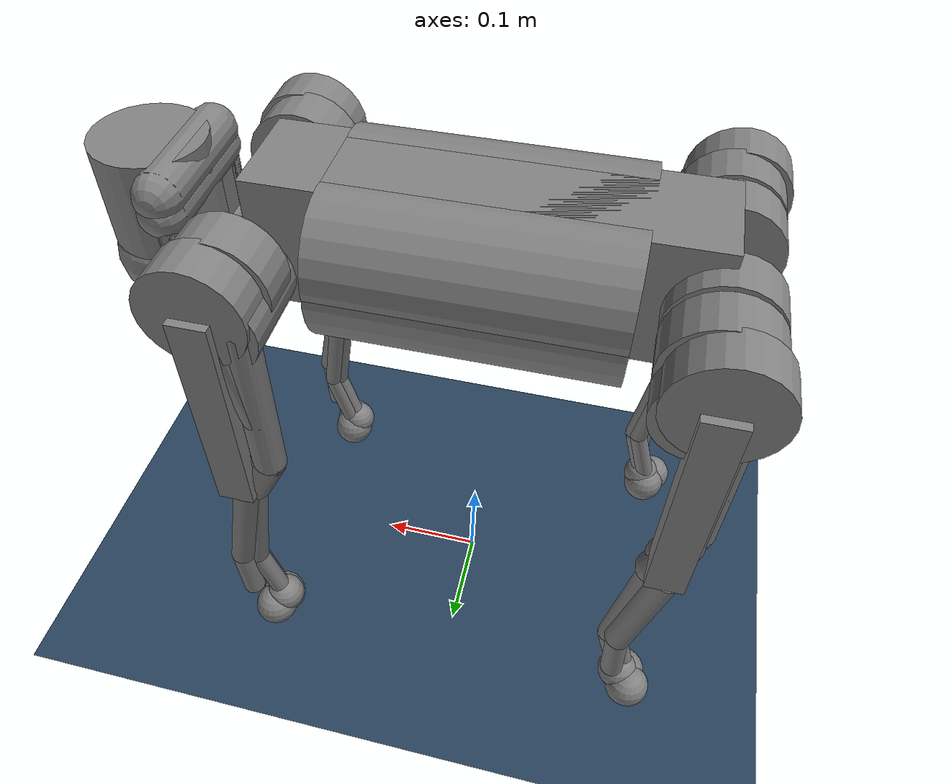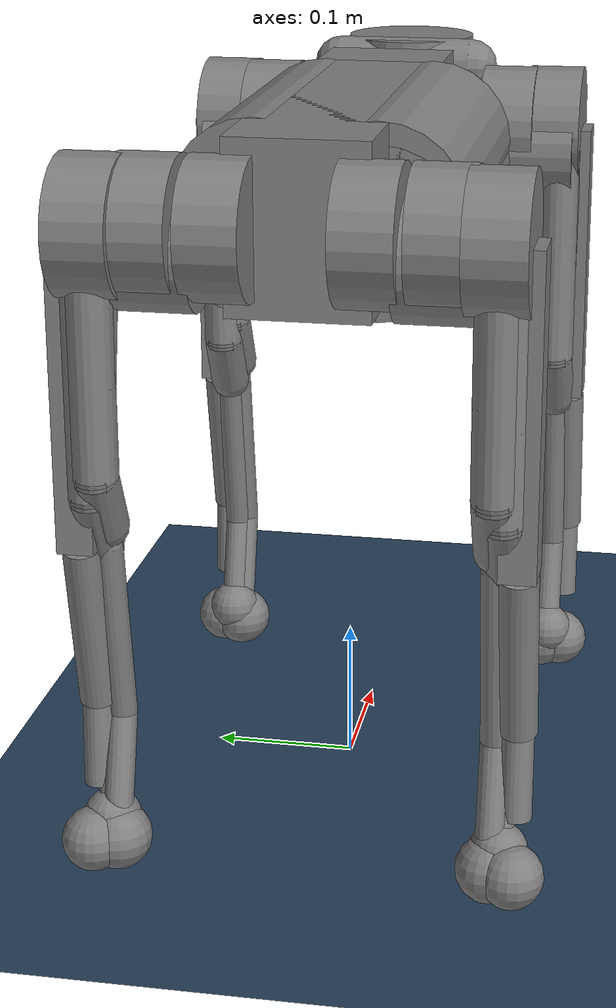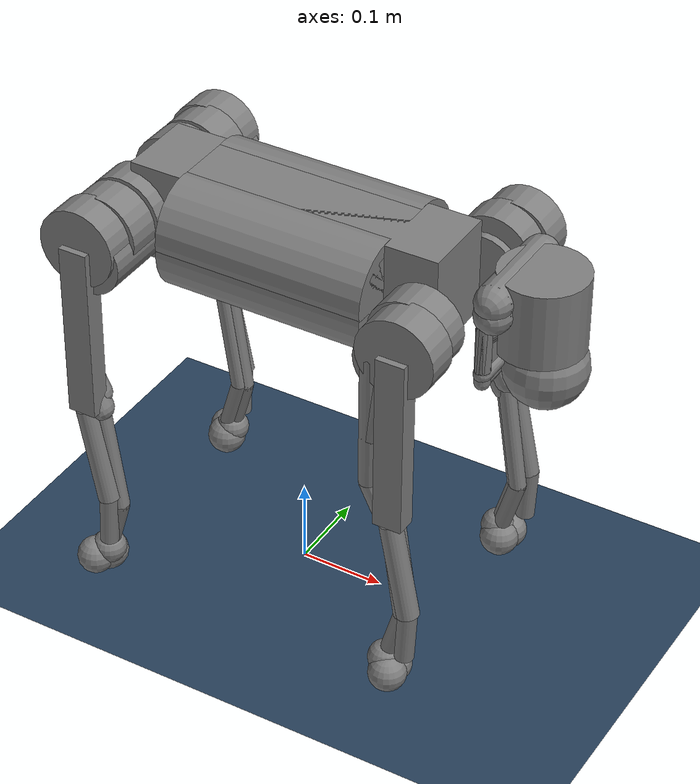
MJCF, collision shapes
<mujoco model="unitree_comparison">
  <compiler angle="radian" meshdir="." texturedir="." autolimits="true"/>
  <option timestep="0.001" iterations="100" tolerance="1e-8" solver="PGS" jacobian="sparse" cone="pyramidal"/>
  <!-- Robot: a1 -->

  <compiler angle="radian"   autolimits="true"/>

  <option cone="elliptic" impratio="100"/>

  <default>
    <default class="a1/a1">
      <geom friction="0.6" margin="0.001"/>
      <joint axis="0 1 0" damping="2" armature="0.01" frictionloss="0.2"/>
      <position kp="100" forcerange="-33.5 33.5"/>
      <default class="a1/abduction">
        <joint axis="1 0 0" damping="1" range="-0.802851 0.802851"/>
        <position ctrlrange="-0.802851 0.802851"/>
      </default>
      <default class="a1/hip">
        <joint range="-1.0472 4.18879"/>
        <position ctrlrange="-1.0472 4.18879"/>
      </default>
      <default class="a1/knee">
        <joint range="-2.69653 -0.916298"/>
        <position ctrlrange="-2.69653 -0.916298"/>
      </default>
      <default class="a1/visual">
        <geom type="mesh" contype="0" conaffinity="0" group="2" material="a1/dark"/>
      </default>
      <default class="a1/collision">
        <geom group="3" type="capsule"/>
        <default class="a1/hip_left">
          <geom size="0.04 0.04" quat="1 1 0 0" type="cylinder" pos="0 0.055 0"/>
        </default>
        <default class="a1/hip_right">
          <geom size="0.04 0.04" quat="1 1 0 0" type="cylinder" pos="0 -0.055 0"/>
        </default>
        <default class="a1/thigh1">
          <geom size="0.015" fromto="-0.02 0 0 -0.02 0 -0.16"/>
        </default>
        <default class="a1/thigh2">
          <geom size="0.015" fromto="0 0 0 -0.02 0 -0.1"/>
        </default>
        <default class="a1/thigh3">
          <geom size="0.015" fromto="-0.02 0 -0.16 0 0 -0.2"/>
        </default>
        <default class="a1/calf1">
          <geom size="0.01" fromto="0 0 0 0.02 0 -0.13"/>
        </default>
        <default class="a1/calf2">
          <geom size="0.01" fromto="0.02 0 -0.13 0 0 -0.2"/>
        </default>
        <default class="a1/foot">
          <geom type="sphere" size="0.02" pos="0 0 -0.2" priority="1" solimp="0.015 1 0.02" condim="6"
            friction="0.8 0.02 0.01"/>
        </default>
      </default>
    </default>
  </default>

  <asset>
    <material name="a1/dark" specular="0" shininess="0.25" rgba="0.2 0.2 0.2 1"/>
    <texture type="2d" name="a1/trunk_A1" file="unitree_a1/assets/trunk_A1.png"/>
    <material name="a1/carbonfibre" texture="a1/trunk_A1" specular="0" shininess="0.25"/>

    <mesh name="a1/calf" class="a1/a1" file="unitree_a1/assets/calf.obj"/>
    <mesh name="a1/hip" class="a1/a1" file="unitree_a1/assets/hip.obj"/>
    <mesh name="a1/thigh" class="a1/a1" file="unitree_a1/assets/thigh.obj"/>
    <mesh name="a1/thigh_mirror" class="a1/a1" file="unitree_a1/assets/thigh_mirror.obj"/>
    <mesh name="a1/trunk" class="a1/a1" file="unitree_a1/assets/trunk.obj"/>
  </asset>

  <worldbody>
    <light name="a1/spotlight" mode="targetbodycom" target="a1/trunk" pos="0 -1 2"/>
    <body name="a1/trunk" pos="0 0 0.43" childclass="a1/a1">
      <freejoint/>
      <inertial mass="4.713" pos="0 0.0041 -0.0005"
        fullinertia="0.0158533 0.0377999 0.0456542 -3.66e-05 -6.11e-05 -2.75e-05"/>
      <geom class="a1/visual" mesh="a1/trunk" material="a1/carbonfibre"/>
      <geom class="a1/collision" size="0.125 0.04 0.057" type="box"/>
      <geom class="a1/collision" quat="1 0 1 0" pos="0 -0.04 0" size="0.058 0.125" type="cylinder"/>
      <geom class="a1/collision" quat="1 0 1 0" pos="0 +0.04 0" size="0.058 0.125" type="cylinder"/>
      <geom class="a1/collision" pos="0.25 0 0" size="0.005 0.06 0.05" type="box"/>
      <geom class="a1/collision" pos="0.25 0.06 -0.01" size="0.009 0.035"/>
      <geom class="a1/collision" pos="0.25 -0.06 -0.01" size="0.009 0.035"/>
      <geom class="a1/collision" pos="0.25 0 -0.05" size="0.005 0.06" quat="1 1 0 0"/>
      <geom class="a1/collision" pos="0.255 0 0.0355" size="0.021 0.052" quat="1 1 0 0"/>
      <body name="a1/FR_hip" pos="0.183 -0.047 0">
        <inertial mass="0.696" pos="-0.003311 -0.000635 3.1e-05" quat="0.507528 0.506268 0.491507 0.494499"
          diaginertia="0.000807752 0.00055293 0.000468983"/>
        <joint class="a1/abduction" name="a1/FR_hip_joint"/>
        <geom class="a1/visual" mesh="a1/hip" quat="0 1 0 0"/>
        <geom class="a1/hip_right"/>
        <body name="a1/FR_thigh" pos="0 -0.08505 0">
          <inertial mass="1.013" pos="-0.003237 0.022327 -0.027326" quat="0.999125 -0.00256393 -0.0409531 -0.00806091"
            diaginertia="0.00555739 0.00513936 0.00133944"/>
          <joint class="a1/hip" name="a1/FR_thigh_joint"/>
          <geom class="a1/visual" mesh="a1/thigh_mirror"/>
          <geom class="a1/thigh1"/>
          <geom class="a1/thigh2"/>
          <geom class="a1/thigh3"/>
          <body name="a1/FR_calf" pos="0 0 -0.2">
            <inertial mass="0.226" pos="0.00472659 0 -0.131975" quat="0.706886 0.017653 0.017653 0.706886"
              diaginertia="0.00340344 0.00339393 3.54834e-05"/>
            <joint class="a1/knee" name="a1/FR_calf_joint"/>
            <geom class="a1/visual" mesh="a1/calf"/>
            <geom class="a1/calf1"/>
            <geom class="a1/calf2"/>
            <geom class="a1/foot"/>
          </body>
        </body>
      </body>
      <body name="a1/FL_hip" pos="0.183 0.047 0">
        <inertial mass="0.696" pos="-0.003311 0.000635 3.1e-05" quat="0.494499 0.491507 0.506268 0.507528"
          diaginertia="0.000807752 0.00055293 0.000468983"/>
        <joint class="a1/abduction" name="a1/FL_hip_joint"/>
        <geom class="a1/visual" mesh="a1/hip"/>
        <geom class="a1/hip_left"/>
        <geom class="a1/collision" size="0.04 0.04" pos="0 0.055 0" quat="1 1 0 0" type="cylinder"/>
        <body name="a1/FL_thigh" pos="0 0.08505 0">
          <inertial mass="1.013" pos="-0.003237 -0.022327 -0.027326" quat="0.999125 0.00256393 -0.0409531 0.00806091"
            diaginertia="0.00555739 0.00513936 0.00133944"/>
          <joint class="a1/hip" name="a1/FL_thigh_joint"/>
          <geom class="a1/visual" mesh="a1/thigh"/>
          <geom class="a1/thigh1"/>
          <geom class="a1/thigh2"/>
          <geom class="a1/thigh3"/>
          <body name="a1/FL_calf" pos="0 0 -0.2">
            <inertial mass="0.226" pos="0.00472659 0 -0.131975" quat="0.706886 0.017653 0.017653 0.706886"
              diaginertia="0.00340344 0.00339393 3.54834e-05"/>
            <joint class="a1/knee" name="a1/FL_calf_joint"/>
            <geom class="a1/visual" mesh="a1/calf"/>
            <geom class="a1/calf1"/>
            <geom class="a1/calf2"/>
            <geom class="a1/foot"/>
          </body>
        </body>
      </body>
      <body name="a1/RR_hip" pos="-0.183 -0.047 0">
        <inertial mass="0.696" pos="0.003311 -0.000635 3.1e-05" quat="0.491507 0.494499 0.507528 0.506268"
          diaginertia="0.000807752 0.00055293 0.000468983"/>
        <joint class="a1/abduction" name="a1/RR_hip_joint"/>
        <geom class="a1/visual" quat="0 0 0 -1" mesh="a1/hip"/>
        <geom class="a1/hip_right"/>
        <body name="a1/RR_thigh" pos="0 -0.08505 0">
          <inertial mass="1.013" pos="-0.003237 0.022327 -0.027326" quat="0.999125 -0.00256393 -0.0409531 -0.00806091"
            diaginertia="0.00555739 0.00513936 0.00133944"/>
          <joint class="a1/hip" name="a1/RR_thigh_joint"/>
          <geom class="a1/visual" mesh="a1/thigh_mirror"/>
          <geom class="a1/thigh1"/>
          <geom class="a1/thigh2"/>
          <geom class="a1/thigh3"/>
          <body name="a1/RR_calf" pos="0 0 -0.2">
            <inertial mass="0.226" pos="0.00472659 0 -0.131975" quat="0.706886 0.017653 0.017653 0.706886"
              diaginertia="0.00340344 0.00339393 3.54834e-05"/>
            <joint class="a1/knee" name="a1/RR_calf_joint"/>
            <geom class="a1/visual" mesh="a1/calf"/>
            <geom class="a1/calf1"/>
            <geom class="a1/calf2"/>
            <geom class="a1/foot"/>
          </body>
        </body>
      </body>
      <body name="a1/RL_hip" pos="-0.183 0.047 0">
        <inertial mass="0.696" pos="0.003311 0.000635 3.1e-05" quat="0.506268 0.507528 0.494499 0.491507"
          diaginertia="0.000807752 0.00055293 0.000468983"/>
        <joint class="a1/abduction" name="a1/RL_hip_joint"/>
        <geom class="a1/visual" quat="0 0 1 0" mesh="a1/hip"/>
        <geom class="a1/hip_left"/>
        <body name="a1/RL_thigh" pos="0 0.08505 0">
          <inertial mass="1.013" pos="-0.003237 -0.022327 -0.027326" quat="0.999125 0.00256393 -0.0409531 0.00806091"
            diaginertia="0.00555739 0.00513936 0.00133944"/>
          <joint class="a1/hip" name="a1/RL_thigh_joint"/>
          <geom class="a1/visual" mesh="a1/thigh"/>
          <geom class="a1/thigh1"/>
          <geom class="a1/thigh2"/>
          <geom class="a1/thigh3"/>
          <body name="a1/RL_calf" pos="0 0 -0.2">
            <inertial mass="0.226" pos="0.00472659 0 -0.131975" quat="0.706886 0.017653 0.017653 0.706886"
              diaginertia="0.00340344 0.00339393 3.54834e-05"/>
            <joint class="a1/knee" name="a1/RL_calf_joint"/>
            <geom class="a1/visual" mesh="a1/calf"/>
            <geom class="a1/calf1"/>
            <geom class="a1/calf2"/>
            <geom class="a1/foot"/>
          </body>
        </body>
      </body>
    </body>
  </worldbody>

  <actuator>
    <position class="a1/abduction" name="a1/FR_hip" joint="a1/FR_hip_joint"/>
    <position class="a1/hip" name="a1/FR_thigh" joint="a1/FR_thigh_joint"/>
    <position class="a1/knee" name="a1/FR_calf" joint="a1/FR_calf_joint"/>
    <position class="a1/abduction" name="a1/FL_hip" joint="a1/FL_hip_joint"/>
    <position class="a1/hip" name="a1/FL_thigh" joint="a1/FL_thigh_joint"/>
    <position class="a1/knee" name="a1/FL_calf" joint="a1/FL_calf_joint"/>
    <position class="a1/abduction" name="a1/RR_hip" joint="a1/RR_hip_joint"/>
    <position class="a1/hip" name="a1/RR_thigh" joint="a1/RR_thigh_joint"/>
    <position class="a1/knee" name="a1/RR_calf" joint="a1/RR_calf_joint"/>
    <position class="a1/abduction" name="a1/RL_hip" joint="a1/RL_hip_joint"/>
    <position class="a1/hip" name="a1/RL_thigh" joint="a1/RL_thigh_joint"/>
    <position class="a1/knee" name="a1/RL_calf" joint="a1/RL_calf_joint"/>
  </actuator>

  <keyframe>
    <key name="a1/home" qpos="0 0 0.27 1 0 0 0 0 0.9 -1.8 0 0.9 -1.8 0 0.9 -1.8 0 0.9 -1.8"
      ctrl="0 0.9 -1.8 0 0.9 -1.8 0 0.9 -1.8 0 0.9 -1.8"/>
  </keyframe>

  <!-- Robot: quadruped -->

  <compiler angle="radian"  autolimits="true"/>

  <option cone="elliptic" impratio="100"/>

  <default>
    <default class="quadruped/quadruped">
      <geom friction="0.6" margin="0.001" condim="1"/>
      <joint axis="0 1 0" damping="2" armature="0.01" frictionloss="0.2"/>
      <position kp="100" forcerange="-33.5 33.5"/>
      <default class="quadruped/abduction">
        <joint axis="1 0 0" damping="1" range="-0.863 0.863"/>
        <position ctrlrange="-0.863 0.863"/>
      </default>
      <default class="quadruped/hip">
        <joint range="-0.686 4.501"/>
        <position ctrlrange="-0.686 4.501"/>
      </default>
      <default class="quadruped/knee">
        <joint range="-2.818 -0.888"/>
        <position forcerange="-35.55 35.55" ctrlrange="-2.818 -0.888"/>
      </default>
      <default class="quadruped/visual">
        <geom type="mesh" contype="0" conaffinity="0" group="2" material="quadruped/dark"/>
      </default>
      <default class="quadruped/collision">
        <geom group="3" type="capsule"/>
        <default class="quadruped/hip_left1">
          <geom size="0.046 0.02" pos="0 0.045 0" quat="1 1 0 0" type="cylinder"/>
        </default>
        <default class="quadruped/hip_left2">
          <geom size="0.031 0.02" pos="0 0.065 0" quat="1 1 0 0" type="cylinder"/>
        </default>
        <default class="quadruped/hip_left3">
          <geom size="0.046 0.02" quat="1 1 0 0" type="cylinder"/>
        </default>
        <default class="quadruped/hip_right1">
          <geom size="0.046 0.02" pos="0 -0.045 0" quat="1 1 0 0" type="cylinder"/>
        </default>
        <default class="quadruped/hip_right2">
          <geom size="0.031 0.02" pos="0 -0.065 0" quat="1 1 0 0" type="cylinder"/>
        </default>
        <default class="quadruped/hip_right3">
          <geom size="0.046 0.02" quat="1 1 0 0" type="cylinder"/>
        </default>
        <default class="quadruped/thigh1">
          <geom size="0.015" fromto="-0.02 0 0 -0.02 0 -0.16"/>
        </default>
        <default class="quadruped/thigh2">
          <geom size="0.015" fromto="0 0 0 -0.02 0 -0.1"/>
        </default>
        <default class="quadruped/thigh3">
          <geom size="0.015" fromto="-0.02 0 -0.16 0 0 -0.2"/>
        </default>
        <default class="quadruped/calf1">
          <geom size="0.01" fromto="0 0 0 0.02 0 -0.13"/>
        </default>
        <default class="quadruped/calf2">
          <geom size="0.01" fromto="0.02 0 -0.13 0 0 -0.2"/>
        </default>
        <default class="quadruped/foot">
          <geom type="sphere" size="0.023" pos="0 0 -0.213" priority="1" solimp="0.015 1 0.023" condim="6"
            friction="0.8 0.02 0.01"/>
        </default>
      </default>
    </default>
  </default>

  <asset>
    <material name="quadruped/dark" rgba="0.2 0.2 0.2 1"/>
    <mesh name="quadruped/trunk" class="quadruped/quadruped" file="unitree_quadruped/assets/trunk.stl"/>
    <mesh name="quadruped/hip" class="quadruped/quadruped" file="unitree_quadruped/assets/hip.stl"/>
    <mesh name="quadruped/thigh_mirror" class="quadruped/quadruped" file="unitree_quadruped/assets/thigh_mirror.stl"/>
    <mesh name="quadruped/calf" class="quadruped/quadruped" file="unitree_quadruped/assets/calf.stl"/>
    <mesh name="quadruped/thigh" class="quadruped/quadruped" file="unitree_quadruped/assets/thigh.stl"/>
  </asset>

  <worldbody>
    <light name="quadruped/spotlight" mode="targetbodycom" target="quadruped/trunk" pos="0 -1 2"/>
    <body name="quadruped/trunk" pos="0 0 0.445" childclass="quadruped/quadruped">
      <camera name="quadruped/tracking" mode="trackcom" pos="0 -1 0.8" xyaxes="1 0 0 0 1 1"/>
      <site name="quadruped/head" pos="0.3 0 0" rgba="1 0 0 1" size="0.02" group="5"/>
      <inertial pos="0.0223 0.002 -0.0005" quat="-0.00342088 0.705204 0.000106698 0.708996" mass="5.204"
        diaginertia="0.0716565 0.0630105 0.0168101"/>
      <freejoint/>
      <geom class="quadruped/visual" mesh="quadruped/trunk"/>
      <geom class="quadruped/collision" size="0.125 0.04 0.057" type="box"/>
      <geom class="quadruped/collision" quat="1 0 1 0" pos="0 -0.04 0" size="0.058 0.125" type="cylinder"/>
      <geom class="quadruped/collision" quat="1 0 1 0" pos="0 +0.04 0" size="0.058 0.125" type="cylinder"/>
      <geom class="quadruped/collision" pos="0.25 0 0" size="0.005 0.06 0.05" type="box"/>
      <geom class="quadruped/collision" pos="0.25 0.06 -0.01" size="0.009 0.035"/>
      <geom class="quadruped/collision" pos="0.25 -0.06 -0.01" size="0.009 0.035"/>
      <geom class="quadruped/collision" pos="0.25 0 -0.05" size="0.01 0.06" quat="1 1 0 0"/>
      <geom class="quadruped/collision" pos="0.255 0 0.0355" size="0.021 0.052" quat="1 1 0 0"/>
      <site name="quadruped/imu" pos="0 0 0"/>
      <body name="quadruped/FR_hip" pos="0.1881 -0.04675 0">
        <inertial pos="-0.0049166 0.00762615 -8.865e-05" quat="0.507341 0.514169 0.495027 0.482891" mass="0.68"
          diaginertia="0.000734064 0.000468438 0.000398719"/>
        <joint class="quadruped/abduction" name="quadruped/FR_hip_joint"/>
        <geom class="quadruped/visual" mesh="quadruped/hip" quat="1 0 0 0"/>
        <geom class="quadruped/hip_right1"/>
        <geom class="quadruped/hip_right2"/>
        <body name="quadruped/FR_thigh" pos="0 -0.08 0">
          <inertial pos="-0.00304722 0.019315 -0.0305004" quat="0.65243 -0.0272313 0.0775126 0.753383" mass="1.009"
            diaginertia="0.00478717 0.00460903 0.000709268"/>
          <joint class="quadruped/hip" name="quadruped/FR_thigh_joint"/>
          <geom class="quadruped/visual" mesh="quadruped/thigh_mirror"/>
          <geom class="quadruped/thigh1"/>
          <geom class="quadruped/thigh2"/>
          <geom class="quadruped/thigh3"/>
          <body name="quadruped/FR_calf" pos="0 0 -0.213">
            <inertial pos="0.00429862 0.000976676 -0.146197" quat="0.691246 0.00357467 0.00511118 0.722592"
              mass="0.195862" diaginertia="0.00149767 0.00148468 3.58427e-05"/>
            <joint class="quadruped/knee" name="quadruped/FR_calf_joint"/>
            <geom class="quadruped/visual" mesh="quadruped/calf"/>
            <geom class="quadruped/calf1"/>
            <geom class="quadruped/calf2"/>
            <geom name="quadruped/FR" class="quadruped/foot"/>
            <site name="quadruped/FR" pos="0 0 -0.213" type="sphere" size="0.023" group="5"/>
          </body>
        </body>
      </body>
      <body name="quadruped/FL_hip" pos="0.1881 0.04675 0">
        <inertial pos="-0.0049166 -0.00762615 -8.865e-05" quat="0.482891 0.495027 0.514169 0.507341" mass="0.68"
          diaginertia="0.000734064 0.000468438 0.000398719"/>
        <joint class="quadruped/abduction" name="quadruped/FL_hip_joint"/>
        <geom class="quadruped/visual" mesh="quadruped/hip"/>
        <geom class="quadruped/hip_left1"/>
        <geom class="quadruped/hip_left2"/>
        <body name="quadruped/FL_thigh" pos="0 0.08 0">
          <inertial pos="-0.00304722 -0.019315 -0.0305004" quat="0.753383 0.0775126 -0.0272313 0.65243" mass="1.009"
            diaginertia="0.00478717 0.00460903 0.000709268"/>
          <joint class="quadruped/hip" name="quadruped/FL_thigh_joint"/>
          <geom class="quadruped/visual" mesh="quadruped/thigh"/>
          <geom class="quadruped/thigh1"/>
          <geom class="quadruped/thigh2"/>
          <geom class="quadruped/thigh3"/>
          <body name="quadruped/FL_calf" pos="0 0 -0.213">
            <inertial pos="0.00429862 0.000976676 -0.146197" quat="0.691246 0.00357467 0.00511118 0.722592"
              mass="0.195862" diaginertia="0.00149767 0.00148468 3.58427e-05"/>
            <joint class="quadruped/knee" name="quadruped/FL_calf_joint"/>
            <geom class="quadruped/visual" mesh="quadruped/calf"/>
            <geom class="quadruped/calf1"/>
            <geom class="quadruped/calf2"/>
            <geom name="quadruped/FL" class="quadruped/foot"/>
            <site name="quadruped/FL" pos="0 0 -0.213" type="sphere" size="0.023" group="5"/>
          </body>
        </body>
      </body>
      <body name="quadruped/RR_hip" pos="-0.1881 -0.04675 0">
        <inertial pos="0.0049166 0.00762615 -8.865e-05" quat="0.495027 0.482891 0.507341 0.514169" mass="0.68"
          diaginertia="0.000734064 0.000468438 0.000398719"/>
        <joint class="quadruped/abduction" name="quadruped/RR_hip_joint"/>
        <geom class="quadruped/visual" quat="0 0 0 -1" mesh="quadruped/hip"/>
        <geom class="quadruped/hip_right1"/>
        <geom class="quadruped/hip_right2"/>
        <geom class="quadruped/hip_right3"/>
        <body name="quadruped/RR_thigh" pos="0 -0.08 0">
          <inertial pos="-0.00304722 0.019315 -0.0305004" quat="0.65243 -0.0272313 0.0775126 0.753383" mass="1.009"
            diaginertia="0.00478717 0.00460903 0.000709268"/>
          <joint class="quadruped/hip" name="quadruped/RR_thigh_joint"/>
          <geom class="quadruped/visual" mesh="quadruped/thigh_mirror"/>
          <geom class="quadruped/thigh1"/>
          <geom class="quadruped/thigh2"/>
          <geom class="quadruped/thigh3"/>
          <body name="quadruped/RR_calf" pos="0 0 -0.213">
            <inertial pos="0.00429862 0.000976676 -0.146197" quat="0.691246 0.00357467 0.00511118 0.722592"
              mass="0.195862" diaginertia="0.00149767 0.00148468 3.58427e-05"/>
            <joint class="quadruped/knee" name="quadruped/RR_calf_joint"/>
            <geom class="quadruped/visual" mesh="quadruped/calf"/>
            <geom class="quadruped/calf1"/>
            <geom class="quadruped/calf2"/>
            <geom name="quadruped/RR" class="quadruped/foot"/>
            <site name="quadruped/RR" pos="0 0 -0.213" type="sphere" size="0.023" group="5"/>
          </body>
        </body>
      </body>
      <body name="quadruped/RL_hip" pos="-0.1881 0.04675 0">
        <inertial pos="0.0049166 -0.00762615 -8.865e-05" quat="0.514169 0.507341 0.482891 0.495027" mass="0.68"
          diaginertia="0.000734064 0.000468438 0.000398719"/>
        <joint class="quadruped/abduction" name="quadruped/RL_hip_joint"/>
        <geom class="quadruped/visual" quat="0 0 1 0" mesh="quadruped/hip"/>
        <geom class="quadruped/hip_left1"/>
        <geom class="quadruped/hip_left2"/>
        <geom class="quadruped/hip_left3"/>
        <body name="quadruped/RL_thigh" pos="0 0.08 0">
          <inertial pos="-0.00304722 -0.019315 -0.0305004" quat="0.753383 0.0775126 -0.0272313 0.65243" mass="1.009"
            diaginertia="0.00478717 0.00460903 0.000709268"/>
          <joint class="quadruped/hip" name="quadruped/RL_thigh_joint"/>
          <geom class="quadruped/visual" mesh="quadruped/thigh"/>
          <geom class="quadruped/thigh1"/>
          <geom class="quadruped/thigh2"/>
          <geom class="quadruped/thigh3"/>
          <body name="quadruped/RL_calf" pos="0 0 -0.213">
            <inertial pos="0.00429862 0.000976676 -0.146197" quat="0.691246 0.00357467 0.00511118 0.722592"
              mass="0.195862" diaginertia="0.00149767 0.00148468 3.58427e-05"/>
            <joint class="quadruped/knee" name="quadruped/RL_calf_joint"/>
            <geom class="quadruped/visual" mesh="quadruped/calf"/>
            <geom class="quadruped/calf1"/>
            <geom class="quadruped/calf2"/>
            <geom name="quadruped/RL" class="quadruped/foot"/>
            <site name="quadruped/RL" pos="0 0 -0.213" type="sphere" size="0.023" group="5"/>
          </body>
        </body>
      </body>
    </body>
  </worldbody>

  <actuator>
    <position class="quadruped/abduction" name="quadruped/FR_hip" joint="quadruped/FR_hip_joint"/>
    <position class="quadruped/hip" name="quadruped/FR_thigh" joint="quadruped/FR_thigh_joint"/>
    <position class="quadruped/knee" name="quadruped/FR_calf" joint="quadruped/FR_calf_joint"/>
    <position class="quadruped/abduction" name="quadruped/FL_hip" joint="quadruped/FL_hip_joint"/>
    <position class="quadruped/hip" name="quadruped/FL_thigh" joint="quadruped/FL_thigh_joint"/>
    <position class="quadruped/knee" name="quadruped/FL_calf" joint="quadruped/FL_calf_joint"/>
    <position class="quadruped/abduction" name="quadruped/RR_hip" joint="quadruped/RR_hip_joint"/>
    <position class="quadruped/hip" name="quadruped/RR_thigh" joint="quadruped/RR_thigh_joint"/>
    <position class="quadruped/knee" name="quadruped/RR_calf" joint="quadruped/RR_calf_joint"/>
    <position class="quadruped/abduction" name="quadruped/RL_hip" joint="quadruped/RL_hip_joint"/>
    <position class="quadruped/hip" name="quadruped/RL_thigh" joint="quadruped/RL_thigh_joint"/>
    <position class="quadruped/knee" name="quadruped/RL_calf" joint="quadruped/RL_calf_joint"/>
  </actuator>

  <keyframe>
    <key name="quadruped/home" qpos="0 0 0.27 1 0 0 0 0 0.9 -1.8 0 0.9 -1.8 0 0.9 -1.8 0 0.9 -1.8"
      ctrl="0 0.9 -1.8 0 0.9 -1.8 0 0.9 -1.8 0 0.9 -1.8"/>
  </keyframe>

  <!-- Robot: go2 -->

  <compiler angle="radian"  autolimits="true"/>

  <option cone="elliptic" impratio="100"/>

  <default>
    <default class="go2/go2">
      <geom friction="0.6" margin="0.001" condim="1"/>
      <joint axis="0 1 0" damping="2" armature="0.01" frictionloss="0.2"/>
      <motor ctrlrange="-23.7 23.7"/>
      <default class="go2/abduction">
        <joint axis="1 0 0" range="-1.0472 1.0472"/>
      </default>
      <default class="go2/hip">
        <default class="go2/front_hip">
          <joint range="-1.5708 3.4907"/>
        </default>
        <default class="go2/back_hip">
          <joint range="-0.5236 4.5379"/>
        </default>
      </default>
      <default class="go2/knee">
        <joint range="-2.7227 -0.83776"/>
        <motor ctrlrange="-45.43 45.43"/>
      </default>
      <default class="go2/visual">
        <geom type="mesh" contype="0" conaffinity="0" group="2"/>
      </default>
      <default class="go2/collision">
        <geom group="3"/>
        <default class="go2/foot">
          <geom size="0.022" pos="-0.002 0 -0.213" priority="1" solimp="0.015 1 0.022" condim="6"
            friction="0.8 0.02 0.01"/>
        </default>
      </default>
    </default>
  </default>

  <asset>
    <material name="go2/metal" rgba=".9 .95 .95 1"/>
    <material name="go2/black" rgba="0 0 0 1"/>
    <material name="go2/white" rgba="1 1 1 1"/>
    <material name="go2/gray" rgba="0.671705 0.692426 0.774270 1"/>

    <mesh name="go2/base_0" file="unitree_go2/assets/base_0.obj"/>
    <mesh name="go2/base_1" file="unitree_go2/assets/base_1.obj"/>
    <mesh name="go2/base_2" file="unitree_go2/assets/base_2.obj"/>
    <mesh name="go2/base_3" file="unitree_go2/assets/base_3.obj"/>
    <mesh name="go2/base_4" file="unitree_go2/assets/base_4.obj"/>
    <mesh name="go2/hip_0" file="unitree_go2/assets/hip_0.obj"/>
    <mesh name="go2/hip_1" file="unitree_go2/assets/hip_1.obj"/>
    <mesh name="go2/thigh_0" file="unitree_go2/assets/thigh_0.obj"/>
    <mesh name="go2/thigh_1" file="unitree_go2/assets/thigh_1.obj"/>
    <mesh name="go2/thigh_mirror_0" file="unitree_go2/assets/thigh_mirror_0.obj"/>
    <mesh name="go2/thigh_mirror_1" file="unitree_go2/assets/thigh_mirror_1.obj"/>
    <mesh name="go2/calf_0" file="unitree_go2/assets/calf_0.obj"/>
    <mesh name="go2/calf_1" file="unitree_go2/assets/calf_1.obj"/>
    <mesh name="go2/calf_mirror_0" file="unitree_go2/assets/calf_mirror_0.obj"/>
    <mesh name="go2/calf_mirror_1" file="unitree_go2/assets/calf_mirror_1.obj"/>
    <mesh name="go2/foot" file="unitree_go2/assets/foot.obj"/>
  </asset>

  <worldbody>
    <body name="go2/base" pos="0 0 0.445" childclass="go2/go2">
      <inertial pos="0.021112 0 -0.005366" quat="-0.000543471 0.713435 -0.00173769 0.700719" mass="6.921"
        diaginertia="0.107027 0.0980771 0.0244531"/>
      <freejoint/>
      <geom mesh="go2/base_0" material="go2/black" class="go2/visual"/>
      <geom mesh="go2/base_1" material="go2/black" class="go2/visual"/>
      <geom mesh="go2/base_2" material="go2/black" class="go2/visual"/>
      <geom mesh="go2/base_3" material="go2/white" class="go2/visual"/>
      <geom mesh="go2/base_4" material="go2/gray" class="go2/visual"/>
      <geom size="0.1881 0.04675 0.057" type="box" class="go2/collision"/>
      <geom size="0.05 0.045" pos="0.285 0 0.01" type="cylinder" class="go2/collision"/>
      <geom size="0.047" pos="0.293 0 -0.06" class="go2/collision"/>
      <site name="go2/imu" pos="-0.02557 0 0.04232"/>
      <body name="go2/FL_hip" pos="0.1934 0.0465 0">
        <inertial pos="-0.0054 0.00194 -0.000105" quat="0.497014 0.499245 0.505462 0.498237" mass="0.678"
          diaginertia="0.00088403 0.000596003 0.000479967"/>
        <joint name="go2/FL_hip_joint" class="go2/abduction"/>
        <geom mesh="go2/hip_0" material="go2/metal" class="go2/visual"/>
        <geom mesh="go2/hip_1" material="go2/gray" class="go2/visual"/>
        <geom size="0.046 0.02" pos="0 0.08 0" quat="1 1 0 0" type="cylinder" class="go2/collision"/>
        <body name="go2/FL_thigh" pos="0 0.0955 0">
          <inertial pos="-0.00374 -0.0223 -0.0327" quat="0.829533 0.0847635 -0.0200632 0.551623" mass="1.152"
            diaginertia="0.00594973 0.00584149 0.000878787"/>
          <joint name="go2/FL_thigh_joint" class="go2/front_hip"/>
          <geom mesh="go2/thigh_0" material="go2/metal" class="go2/visual"/>
          <geom mesh="go2/thigh_1" material="go2/gray" class="go2/visual"/>
          <geom size="0.1065 0.01225 0.017" pos="0 0 -0.1065" quat="0.707107 0 0.707107 0" type="box" class="go2/collision"/>
          <body name="go2/FL_calf" pos="0 0 -0.213">
            <inertial pos="0.00629595 -0.000622121 -0.141417" quat="0.710672 0.00154099 -0.00450087 0.703508"
              mass="0.241352" diaginertia="0.0014901 0.00146356 5.31397e-05"/>
            <joint name="go2/FL_calf_joint" class="go2/knee"/>
            <geom mesh="go2/calf_0" material="go2/gray" class="go2/visual"/>
            <geom mesh="go2/calf_1" material="go2/black" class="go2/visual"/>
            <geom size="0.012 0.06" pos="0.008 0 -0.06" quat="0.994493 0 -0.104807 0" type="cylinder" class="go2/collision"/>
            <geom size="0.011 0.0325" pos="0.02 0 -0.148" quat="0.999688 0 0.0249974 0" type="cylinder" class="go2/collision"/>
            <geom pos="0 0 -0.213" mesh="go2/foot" class="go2/visual" material="go2/black"/>
            <geom name="go2/FL" class="go2/foot"/>
          </body>
        </body>
      </body>
      <body name="go2/FR_hip" pos="0.1934 -0.0465 0">
        <inertial pos="-0.0054 -0.00194 -0.000105" quat="0.498237 0.505462 0.499245 0.497014" mass="0.678"
          diaginertia="0.00088403 0.000596003 0.000479967"/>
        <joint name="go2/FR_hip_joint" class="go2/abduction"/>
        <geom mesh="go2/hip_0" material="go2/metal" class="go2/visual" quat="4.63268e-05 1 0 0"/>
        <geom mesh="go2/hip_1" material="go2/gray" class="go2/visual" quat="4.63268e-05 1 0 0"/>
        <geom size="0.046 0.02" pos="0 -0.08 0" quat="0.707107 0.707107 0 0" type="cylinder" class="go2/collision"/>
        <body name="go2/FR_thigh" pos="0 -0.0955 0">
          <inertial pos="-0.00374 0.0223 -0.0327" quat="0.551623 -0.0200632 0.0847635 0.829533" mass="1.152"
            diaginertia="0.00594973 0.00584149 0.000878787"/>
          <joint name="go2/FR_thigh_joint" class="go2/front_hip"/>
          <geom mesh="go2/thigh_mirror_0" material="go2/metal" class="go2/visual"/>
          <geom mesh="go2/thigh_mirror_1" material="go2/gray" class="go2/visual"/>
          <geom size="0.1065 0.01225 0.017" pos="0 0 -0.1065" quat="0.707107 0 0.707107 0" type="box" class="go2/collision"/>
          <body name="go2/FR_calf" pos="0 0 -0.213">
            <inertial pos="0.00629595 0.000622121 -0.141417" quat="0.703508 -0.00450087 0.00154099 0.710672"
              mass="0.241352" diaginertia="0.0014901 0.00146356 5.31397e-05"/>
            <joint name="go2/FR_calf_joint" class="go2/knee"/>
            <geom mesh="go2/calf_mirror_0" material="go2/gray" class="go2/visual"/>
            <geom mesh="go2/calf_mirror_1" material="go2/black" class="go2/visual"/>
            <geom size="0.013 0.06" pos="0.01 0 -0.06" quat="0.995004 0 -0.0998334 0" type="cylinder" class="go2/collision"/>
            <geom size="0.011 0.0325" pos="0.02 0 -0.148" quat="0.999688 0 0.0249974 0" type="cylinder" class="go2/collision"/>
            <geom pos="0 0 -0.213" mesh="go2/foot" class="go2/visual" material="go2/black"/>
            <geom name="go2/FR" class="go2/foot"/>
          </body>
        </body>
      </body>
      <body name="go2/RL_hip" pos="-0.1934 0.0465 0">
        <inertial pos="0.0054 0.00194 -0.000105" quat="0.505462 0.498237 0.497014 0.499245" mass="0.678"
          diaginertia="0.00088403 0.000596003 0.000479967"/>
        <joint name="go2/RL_hip_joint" class="go2/abduction"/>
        <geom mesh="go2/hip_0" material="go2/metal" class="go2/visual" quat="4.63268e-05 0 1 0"/>
        <geom mesh="go2/hip_1" material="go2/gray" class="go2/visual" quat="4.63268e-05 0 1 0"/>
        <geom size="0.046 0.02" pos="0 0.08 0" quat="0.707107 0.707107 0 0" type="cylinder" class="go2/collision"/>
        <body name="go2/RL_thigh" pos="0 0.0955 0">
          <inertial pos="-0.00374 -0.0223 -0.0327" quat="0.829533 0.0847635 -0.0200632 0.551623" mass="1.152"
            diaginertia="0.00594973 0.00584149 0.000878787"/>
          <joint name="go2/RL_thigh_joint" class="go2/back_hip"/>
          <geom mesh="go2/thigh_0" material="go2/metal" class="go2/visual"/>
          <geom mesh="go2/thigh_1" material="go2/gray" class="go2/visual"/>
          <geom size="0.1065 0.01225 0.017" pos="0 0 -0.1065" quat="0.707107 0 0.707107 0" type="box" class="go2/collision"/>
          <body name="go2/RL_calf" pos="0 0 -0.213">
            <inertial pos="0.00629595 -0.000622121 -0.141417" quat="0.710672 0.00154099 -0.00450087 0.703508"
              mass="0.241352" diaginertia="0.0014901 0.00146356 5.31397e-05"/>
            <joint name="go2/RL_calf_joint" class="go2/knee"/>
            <geom mesh="go2/calf_0" material="go2/gray" class="go2/visual"/>
            <geom mesh="go2/calf_1" material="go2/black" class="go2/visual"/>
            <geom size="0.013 0.06" pos="0.01 0 -0.06" quat="0.995004 0 -0.0998334 0" type="cylinder" class="go2/collision"/>
            <geom size="0.011 0.0325" pos="0.02 0 -0.148" quat="0.999688 0 0.0249974 0" type="cylinder" class="go2/collision"/>
            <geom pos="0 0 -0.213" mesh="go2/foot" class="go2/visual" material="go2/black"/>
            <geom name="go2/RL" class="go2/foot"/>
          </body>
        </body>
      </body>
      <body name="go2/RR_hip" pos="-0.1934 -0.0465 0">
        <inertial pos="0.0054 -0.00194 -0.000105" quat="0.499245 0.497014 0.498237 0.505462" mass="0.678"
          diaginertia="0.00088403 0.000596003 0.000479967"/>
        <joint name="go2/RR_hip_joint" class="go2/abduction"/>
        <geom mesh="go2/hip_0" material="go2/metal" class="go2/visual" quat="2.14617e-09 4.63268e-05 4.63268e-05 -1"/>
        <geom mesh="go2/hip_1" material="go2/gray" class="go2/visual" quat="2.14617e-09 4.63268e-05 4.63268e-05 -1"/>
        <geom size="0.046 0.02" pos="0 -0.08 0" quat="0.707107 0.707107 0 0" type="cylinder" class="go2/collision"/>
        <body name="go2/RR_thigh" pos="0 -0.0955 0">
          <inertial pos="-0.00374 0.0223 -0.0327" quat="0.551623 -0.0200632 0.0847635 0.829533" mass="1.152"
            diaginertia="0.00594973 0.00584149 0.000878787"/>
          <joint name="go2/RR_thigh_joint" class="go2/back_hip"/>
          <geom mesh="go2/thigh_mirror_0" material="go2/metal" class="go2/visual"/>
          <geom mesh="go2/thigh_mirror_1" material="go2/gray" class="go2/visual"/>
          <geom size="0.1065 0.01225 0.017" pos="0 0 -0.1065" quat="0.707107 0 0.707107 0" type="box" class="go2/collision"/>
          <body name="go2/RR_calf" pos="0 0 -0.213">
            <inertial pos="0.00629595 0.000622121 -0.141417" quat="0.703508 -0.00450087 0.00154099 0.710672"
              mass="0.241352" diaginertia="0.0014901 0.00146356 5.31397e-05"/>
            <joint name="go2/RR_calf_joint" class="go2/knee"/>
            <geom mesh="go2/calf_mirror_0" material="go2/gray" class="go2/visual"/>
            <geom mesh="go2/calf_mirror_1" material="go2/black" class="go2/visual"/>
            <geom size="0.013 0.06" pos="0.01 0 -0.06" quat="0.995004 0 -0.0998334 0" type="cylinder" class="go2/collision"/>
            <geom size="0.011 0.0325" pos="0.02 0 -0.148" quat="0.999688 0 0.0249974 0" type="cylinder" class="go2/collision"/>
            <geom pos="0 0 -0.213" mesh="go2/foot" class="go2/visual" material="go2/black"/>
            <geom name="go2/RR" class="go2/foot"/>
          </body>
        </body>
      </body>
    </body>
  </worldbody>

  <actuator>
    <motor class="go2/abduction" name="go2/FL_hip" joint="go2/FL_hip_joint"/>
    <motor class="go2/hip" name="go2/FL_thigh" joint="go2/FL_thigh_joint"/>
    <motor class="go2/knee" name="go2/FL_calf" joint="go2/FL_calf_joint"/>
    <motor class="go2/abduction" name="go2/FR_hip" joint="go2/FR_hip_joint"/>
    <motor class="go2/hip" name="go2/FR_thigh" joint="go2/FR_thigh_joint"/>
    <motor class="go2/knee" name="go2/FR_calf" joint="go2/FR_calf_joint"/>
    <motor class="go2/abduction" name="go2/RL_hip" joint="go2/RL_hip_joint"/>
    <motor class="go2/hip" name="go2/RL_thigh" joint="go2/RL_thigh_joint"/>
    <motor class="go2/knee" name="go2/RL_calf" joint="go2/RL_calf_joint"/>
    <motor class="go2/abduction" name="go2/RR_hip" joint="go2/RR_hip_joint"/>
    <motor class="go2/hip" name="go2/RR_thigh" joint="go2/RR_thigh_joint"/>
    <motor class="go2/knee" name="go2/RR_calf" joint="go2/RR_calf_joint"/>
  </actuator>

  <keyframe>
    <key name="go2/home" qpos="0 0 0.27 1 0 0 0 0 0.9 -1.8 0 0.9 -1.8 0 0.9 -1.8 0 0.9 -1.8"
      ctrl="0 0.9 -1.8 0 0.9 -1.8 0 0.9 -1.8 0 0.9 -1.8"/>
  </keyframe>

  <visual>
    <headlight diffuse="0.6 0.6 0.6" ambient="0.3 0.3 0.3" specular="0 0 0"/>
    <rgba haze="0.15 0.25 0.35 1"/>
    <global azimuth="120" elevation="-20"/>
  </visual>

  <asset>
    <texture type="skybox" builtin="gradient" rgb1="0.3 0.5 0.7" rgb2="0 0 0" width="512" height="3072"/>
    <texture type="2d" name="groundplane" builtin="checker" mark="edge" rgb1="0.2 0.3 0.4" rgb2="0.1 0.2 0.3"
      markrgb="0.8 0.8 0.8" width="300" height="300"/>
    <material name="groundplane" texture="groundplane" texuniform="true" texrepeat="5 5" reflectance="0.2"/>
  </asset>

  <worldbody>
    <light pos="0 0 1.5" dir="0 0 -1" directional="true"/>
    <geom name="floor" size="0 0 0.05" type="plane" material="groundplane" friction="2.0 2.0 0.01"/>
  </worldbody>
</mujoco>
